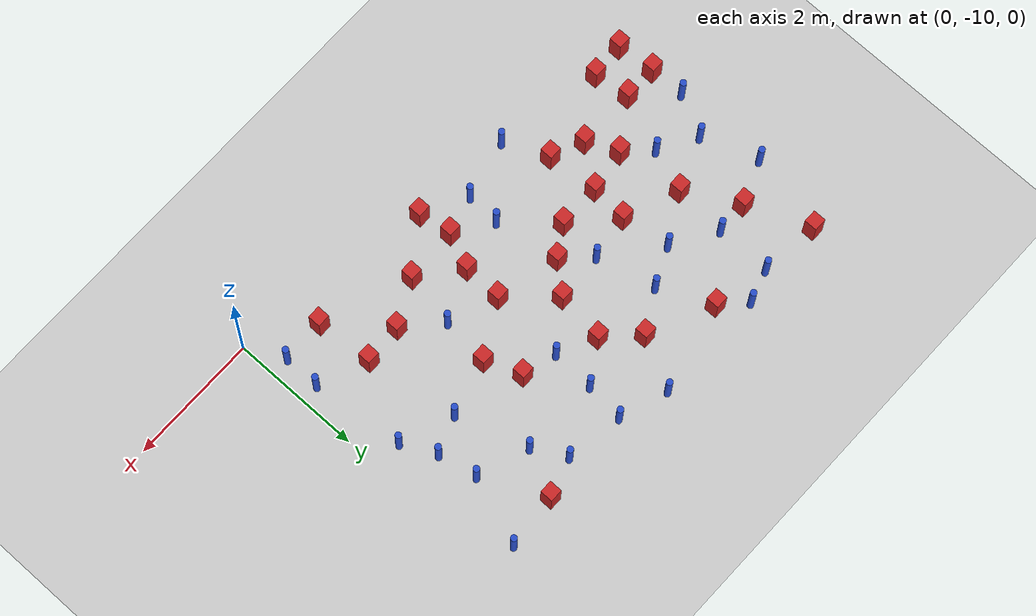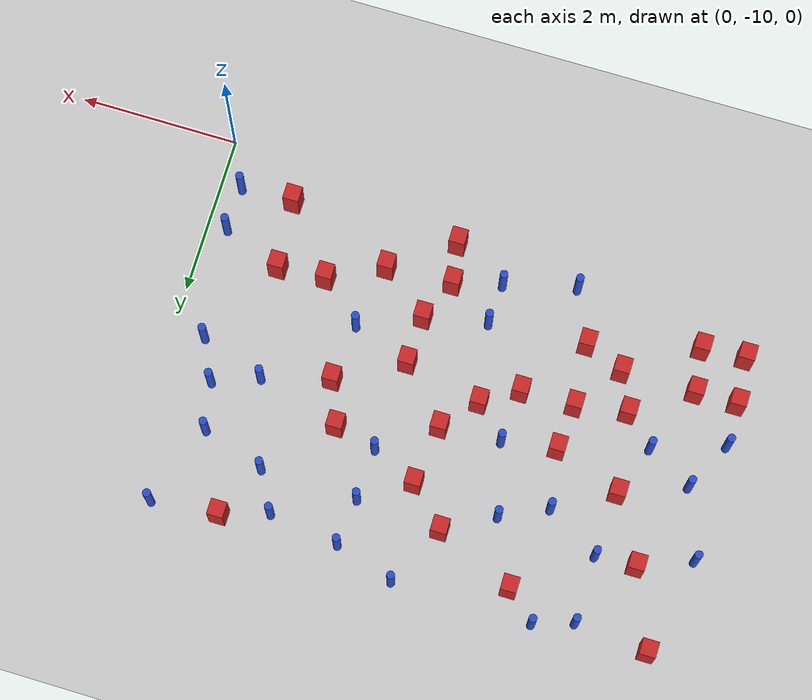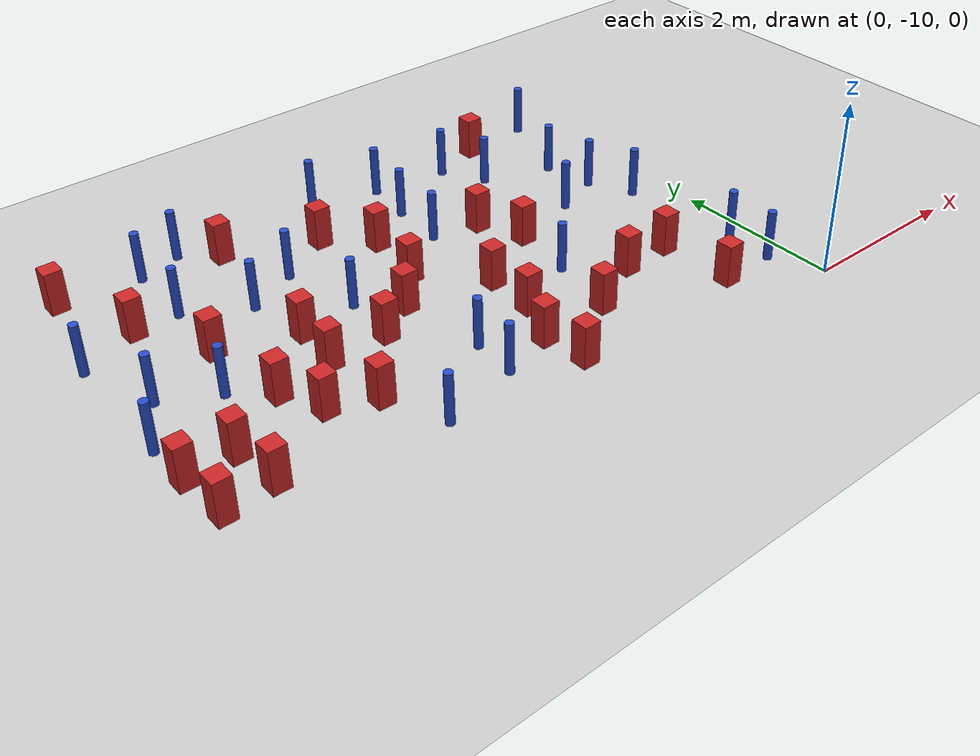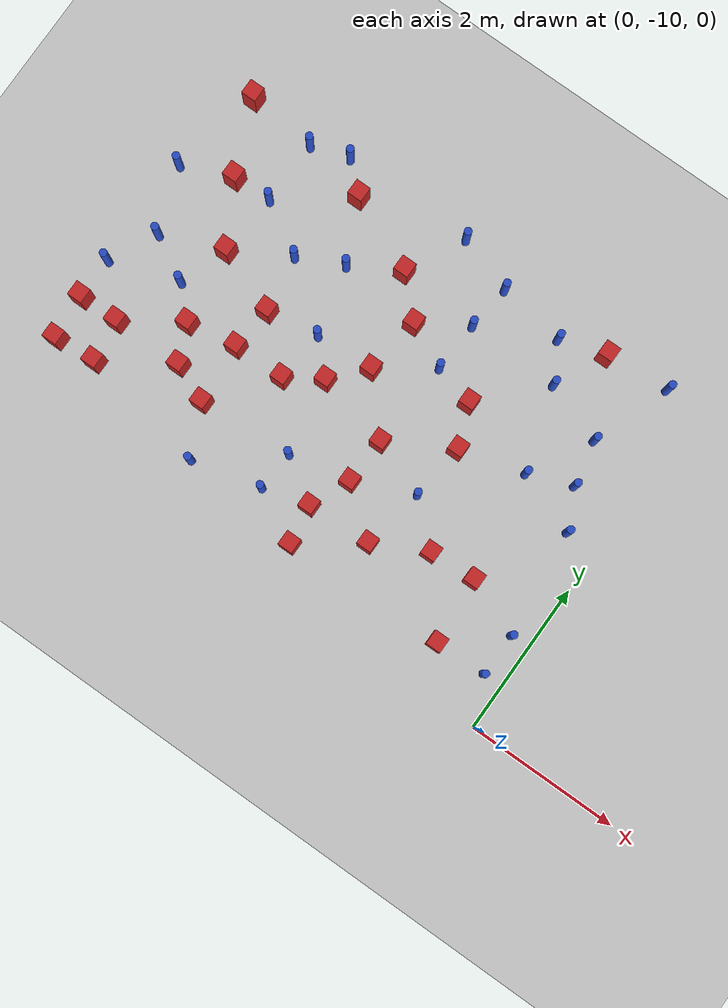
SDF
<sdf version="1.6">
 <world name="default">
  <model name="ground_plane">
   <static>1</static>
   <link name="link">
    <collision name="collision">
     <geometry><plane><normal>0 0 1</normal><size>100 100</size></plane></geometry>
     <surface><friction><ode><mu>100</mu><mu2>50</mu2></ode></friction></surface>
    </collision>
    <visual name="visual">
     <cast_shadows>0</cast_shadows>
     <geometry><plane><normal>0 0 1</normal><size>100 100</size></plane></geometry>
     <material>
      <ambient>1.0 1.0 1.0 1.0</ambient>
      <diffuse>0.8 0.8 0.8 1.0</diffuse>
      <specular>0.01 0.01 0.01 1.000000</specular>
     </material>
    </visual>
   </link>
  </model>
  <model name="square_post_obstacle6">
   <static>true</static>
   <pose>-3.40146848392 -6.44228266172 8.22691968438e-08 7.2212513382e-06 -7.54495500217e-07 2.29674213826e-05</pose>
   <link name="link">
    <pose>0 0 0.25 0 -0 0</pose>
    <inertial>
     <mass>100</mass>
     <inertia>
      <ixx>0.166667</ixx>
      <ixy>0</ixy>
      <ixz>0</ixz>
      <iyy>0.166667</iyy>
      <iyz>0</iyz>
      <izz>0.166667</izz>
     </inertia>
    </inertial>
    <collision name="collision"><geometry><box><size>.2 .2 .5</size></box></geometry></collision>
    <visual name="visual">
     <geometry><box><size>.2 .2 .5</size></box></geometry>
     <material>
      <script><name>Gazebo/Red</name><uri>file://media/materials/scripts/gazebo.material</uri></script>
     </material>
    </visual>
   </link>
  </model>
  <model name="square_post_obstacle9">
   <static>true</static>
   <pose>-6.22999508174 -6.23063073512 8.22691968438e-08 7.2212513382e-06 -7.54495500217e-07 2.29674213826e-05</pose>
   <link name="link">
    <pose>0 0 0.25 0 -0 0</pose>
    <inertial>
     <mass>100</mass>
     <inertia>
      <ixx>0.166667</ixx>
      <ixy>0</ixy>
      <ixz>0</ixz>
      <iyy>0.166667</iyy>
      <iyz>0</iyz>
      <izz>0.166667</izz>
     </inertia>
    </inertial>
    <collision name="collision"><geometry><box><size>.2 .2 .5</size></box></geometry></collision>
    <visual name="visual">
     <geometry><box><size>.2 .2 .5</size></box></geometry>
     <material>
      <script><name>Gazebo/Red</name><uri>file://media/materials/scripts/gazebo.material</uri></script>
     </material>
    </visual>
   </link>
  </model>
  <model name="square_post_obstacle11">
   <static>true</static>
   <pose>-1.62586627458 -8.59294404825 8.22691968438e-08 7.22125133819e-06 -7.54495500217e-07 2.29674213826e-05</pose>
   <link name="link">
    <pose>0 0 0.25 0 -0 0</pose>
    <inertial>
     <mass>100</mass>
     <inertia>
      <ixx>0.166667</ixx>
      <ixy>0</ixy>
      <ixz>0</ixz>
      <iyy>0.166667</iyy>
      <iyz>0</iyz>
      <izz>0.166667</izz>
     </inertia>
    </inertial>
    <collision name="collision"><geometry><box><size>.2 .2 .5</size></box></geometry></collision>
    <visual name="visual">
     <geometry><box><size>.2 .2 .5</size></box></geometry>
     <material>
      <script><name>Gazebo/Red</name><uri>file://media/materials/scripts/gazebo.material</uri></script>
     </material>
    </visual>
   </link>
  </model>
  <model name="square_post_obstacle14">
   <static>true</static>
   <pose>-5.78041702265 -7.02790557127 8.22691968438e-08 7.22125133819e-06 -7.54495500217e-07 2.29674213826e-05</pose>
   <link name="link">
    <pose>0 0 0.25 0 -0 0</pose>
    <inertial>
     <mass>100</mass>
     <inertia>
      <ixx>0.166667</ixx>
      <ixy>0</ixy>
      <ixz>0</ixz>
      <iyy>0.166667</iyy>
      <iyz>0</iyz>
      <izz>0.166667</izz>
     </inertia>
    </inertial>
    <collision name="collision"><geometry><box><size>.2 .2 .5</size></box></geometry></collision>
    <visual name="visual">
     <geometry><box><size>.2 .2 .5</size></box></geometry>
     <material>
      <script><name>Gazebo/Red</name><uri>file://media/materials/scripts/gazebo.material</uri></script>
     </material>
    </visual>
   </link>
  </model>
  <model name="pole_obstacle9">
   <static>true</static>
   <pose>-2.82991241068 -6.70532986122 2.88873142074e-08 -9.90536689859e-09 4.60219948989e-07 -1.20965994961e-07</pose>
   <link name="link">
    <pose>0 0 0.3 0 -0 0</pose>
    <inertial>
     <mass>1</mass>
     <inertia><ixx>0.145833</ixx><ixy>0</ixy><ixz>0</ixz><iyy>0.145833</iyy><iyz>0</iyz><izz>0.125</izz></inertia>
    </inertial>
    <collision name="collision">
     <geometry><cylinder><radius>0.05</radius><length>.6</length></cylinder></geometry>
    </collision>
    <visual name="visual">
     <geometry><cylinder><radius>0.05</radius><length>.6</length></cylinder></geometry>
     <material>
      <script><name>Gazebo/Blue</name><uri>file://media/materials/scripts/gazebo.material</uri></script>
     </material>
    </visual>
   </link>
  </model>
  <model name="square_post_obstacle23">
   <static>true</static>
   <pose>-2.0816851022 -7.38907509785 8.22691968438e-08 7.22125133819e-06 -7.54495500217e-07 2.29674213826e-05</pose>
   <link name="link">
    <pose>0 0 0.25 0 -0 0</pose>
    <inertial>
     <mass>100</mass>
     <inertia>
      <ixx>0.166667</ixx>
      <ixy>0</ixy>
      <ixz>0</ixz>
      <iyy>0.166667</iyy>
      <iyz>0</iyz>
      <izz>0.166667</izz>
     </inertia>
    </inertial>
    <collision name="collision"><geometry><box><size>.2 .2 .5</size></box></geometry></collision>
    <visual name="visual">
     <geometry><box><size>.2 .2 .5</size></box></geometry>
     <material>
      <script><name>Gazebo/Red</name><uri>file://media/materials/scripts/gazebo.material</uri></script>
     </material>
    </visual>
   </link>
  </model>
  <model name="pole_obstacle17">
   <static>true</static>
   <pose>-0.797242546253 -6.34518322117 2.88873142074e-08 -9.90536689661e-09 4.60219948993e-07 -1.20965994957e-07</pose>
   <link name="link">
    <pose>0 0 0.3 0 -0 0</pose>
    <inertial>
     <mass>1</mass>
     <inertia><ixx>0.145833</ixx><ixy>0</ixy><ixz>0</ixz><iyy>0.145833</iyy><iyz>0</iyz><izz>0.125</izz></inertia>
    </inertial>
    <collision name="collision">
     <geometry><cylinder><radius>0.05</radius><length>.6</length></cylinder></geometry>
    </collision>
    <visual name="visual">
     <geometry><cylinder><radius>0.05</radius><length>.6</length></cylinder></geometry>
     <material>
      <script><name>Gazebo/Blue</name><uri>file://media/materials/scripts/gazebo.material</uri></script>
     </material>
    </visual>
   </link>
  </model>
  <model name="pole_obstacle20">
   <static>true</static>
   <pose>-6.00977015047 -7.66628520405 2.88873142074e-08 -9.90536690842e-09 4.60219948965e-07 -1.20965994976e-07</pose>
   <link name="link">
    <pose>0 0 0.3 0 -0 0</pose>
    <inertial>
     <mass>1</mass>
     <inertia><ixx>0.145833</ixx><ixy>0</ixy><ixz>0</ixz><iyy>0.145833</iyy><iyz>0</iyz><izz>0.125</izz></inertia>
    </inertial>
    <collision name="collision">
     <geometry><cylinder><radius>0.05</radius><length>.6</length></cylinder></geometry>
    </collision>
    <visual name="visual">
     <geometry><cylinder><radius>0.05</radius><length>.6</length></cylinder></geometry>
     <material>
      <script><name>Gazebo/Blue</name><uri>file://media/materials/scripts/gazebo.material</uri></script>
     </material>
    </visual>
   </link>
  </model>
  <model name="pole_obstacle31">
   <static>true</static>
   <pose>-2.80197527637 -6.05048496452 2.88873142074e-08 -9.90536689859e-09 4.60219948989e-07 -1.20965994961e-07</pose>
   <link name="link">
    <pose>0 0 0.3 0 -0 0</pose>
    <inertial>
     <mass>1</mass>
     <inertia><ixx>0.145833</ixx><ixy>0</ixy><ixz>0</ixz><iyy>0.145833</iyy><iyz>0</iyz><izz>0.125</izz></inertia>
    </inertial>
    <collision name="collision">
     <geometry><cylinder><radius>0.05</radius><length>.6</length></cylinder></geometry>
    </collision>
    <visual name="visual">
     <geometry><cylinder><radius>0.05</radius><length>.6</length></cylinder></geometry>
     <material>
      <script><name>Gazebo/Blue</name><uri>file://media/materials/scripts/gazebo.material</uri></script>
     </material>
    </visual>
   </link>
  </model>
  <model name="pole_obstacle37">
   <static>true</static>
   <pose>-6.58384882462 -7.34538599902 2.88873142074e-08 -9.90536690842e-09 4.60219948965e-07 -1.20965994976e-07</pose>
   <link name="link">
    <pose>0 0 0.3 0 -0 0</pose>
    <inertial>
     <mass>1</mass>
     <inertia><ixx>0.145833</ixx><ixy>0</ixy><ixz>0</ixz><iyy>0.145833</iyy><iyz>0</iyz><izz>0.125</izz></inertia>
    </inertial>
    <collision name="collision">
     <geometry><cylinder><radius>0.05</radius><length>.6</length></cylinder></geometry>
    </collision>
    <visual name="visual">
     <geometry><cylinder><radius>0.05</radius><length>.6</length></cylinder></geometry>
     <material>
      <script><name>Gazebo/Blue</name><uri>file://media/materials/scripts/gazebo.material</uri></script>
     </material>
    </visual>
   </link>
  </model>
  <model name="pole_obstacle40">
   <static>true</static>
   <pose>-5.72032559281 -5.36293134777 2.88873142074e-08 -9.90536690842e-09 4.60219948965e-07 -1.20965994976e-07</pose>
   <link name="link">
    <pose>0 0 0.3 0 -0 0</pose>
    <inertial>
     <mass>1</mass>
     <inertia><ixx>0.145833</ixx><ixy>0</ixy><ixz>0</ixz><iyy>0.145833</iyy><iyz>0</iyz><izz>0.125</izz></inertia>
    </inertial>
    <collision name="collision">
     <geometry><cylinder><radius>0.05</radius><length>.6</length></cylinder></geometry>
    </collision>
    <visual name="visual">
     <geometry><cylinder><radius>0.05</radius><length>.6</length></cylinder></geometry>
     <material>
      <script><name>Gazebo/Blue</name><uri>file://media/materials/scripts/gazebo.material</uri></script>
     </material>
    </visual>
   </link>
  </model>
  <model name="pole_obstacle60">
   <static>true</static>
   <pose>-6.89643523109 -7.96466774745 2.88873142074e-08 -9.90536690264e-09 4.60219948979e-07 -1.20965994965e-07</pose>
   <link name="link">
    <pose>0 0 0.3 0 -0 0</pose>
    <inertial>
     <mass>1</mass>
     <inertia><ixx>0.145833</ixx><ixy>0</ixy><ixz>0</ixz><iyy>0.145833</iyy><iyz>0</iyz><izz>0.125</izz></inertia>
    </inertial>
    <collision name="collision">
     <geometry><cylinder><radius>0.05</radius><length>.6</length></cylinder></geometry>
    </collision>
    <visual name="visual">
     <geometry><cylinder><radius>0.05</radius><length>.6</length></cylinder></geometry>
     <material>
      <script><name>Gazebo/Blue</name><uri>file://media/materials/scripts/gazebo.material</uri></script>
     </material>
    </visual>
   </link>
  </model>
  <model name="square_post_obstacle65">
   <static>true</static>
   <pose>-4.94007563499 -7.34598108323 8.22691968438e-08 7.2212513382e-06 -7.54495500217e-07 2.29674213826e-05</pose>
   <link name="link">
    <pose>0 0 0.25 0 -0 0</pose>
    <inertial>
     <mass>100</mass>
     <inertia>
      <ixx>0.166667</ixx>
      <ixy>0</ixy>
      <ixz>0</ixz>
      <iyy>0.166667</iyy>
      <iyz>0</iyz>
      <izz>0.166667</izz>
     </inertia>
    </inertial>
    <collision name="collision"><geometry><box><size>.2 .2 .5</size></box></geometry></collision>
    <visual name="visual">
     <geometry><box><size>.2 .2 .5</size></box></geometry>
     <material>
      <script><name>Gazebo/Red</name><uri>file://media/materials/scripts/gazebo.material</uri></script>
     </material>
    </visual>
   </link>
  </model>
  <model name="pole_obstacle66">
   <static>true</static>
   <pose>-4.48494771432 -6.33307576314 2.88873142074e-08 -9.90536690842e-09 4.60219948965e-07 -1.20965994976e-07</pose>
   <link name="link">
    <pose>0 0 0.3 0 -0 0</pose>
    <inertial>
     <mass>1</mass>
     <inertia><ixx>0.145833</ixx><ixy>0</ixy><ixz>0</ixz><iyy>0.145833</iyy><iyz>0</iyz><izz>0.125</izz></inertia>
    </inertial>
    <collision name="collision">
     <geometry><cylinder><radius>0.05</radius><length>.6</length></cylinder></geometry>
    </collision>
    <visual name="visual">
     <geometry><cylinder><radius>0.05</radius><length>.6</length></cylinder></geometry>
     <material>
      <script><name>Gazebo/Blue</name><uri>file://media/materials/scripts/gazebo.material</uri></script>
     </material>
    </visual>
   </link>
  </model>
  <model name="pole_obstacle73">
   <static>true</static>
   <pose>-0.42837406353 -5.3205405281 2.88873142074e-08 -9.90536689683e-09 4.60219948993e-07 -1.20965994957e-07</pose>
   <link name="link">
    <pose>0 0 0.3 0 -0 0</pose>
    <inertial>
     <mass>1</mass>
     <inertia><ixx>0.145833</ixx><ixy>0</ixy><ixz>0</ixz><iyy>0.145833</iyy><iyz>0</iyz><izz>0.125</izz></inertia>
    </inertial>
    <collision name="collision">
     <geometry><cylinder><radius>0.05</radius><length>.6</length></cylinder></geometry>
    </collision>
    <visual name="visual">
     <geometry><cylinder><radius>0.05</radius><length>.6</length></cylinder></geometry>
     <material>
      <script><name>Gazebo/Blue</name><uri>file://media/materials/scripts/gazebo.material</uri></script>
     </material>
    </visual>
   </link>
  </model>
  <model name="pole_obstacle76">
   <static>true</static>
   <pose>-1.85871130663 -5.58380083242 2.88873142074e-08 -9.90536689852e-09 4.60219948989e-07 -1.2096599496e-07</pose>
   <link name="link">
    <pose>0 0 0.3 0 -0 0</pose>
    <inertial>
     <mass>1</mass>
     <inertia><ixx>0.145833</ixx><ixy>0</ixy><ixz>0</ixz><iyy>0.145833</iyy><iyz>0</iyz><izz>0.125</izz></inertia>
    </inertial>
    <collision name="collision">
     <geometry><cylinder><radius>0.05</radius><length>.6</length></cylinder></geometry>
    </collision>
    <visual name="visual">
     <geometry><cylinder><radius>0.05</radius><length>.6</length></cylinder></geometry>
     <material>
      <script><name>Gazebo/Blue</name><uri>file://media/materials/scripts/gazebo.material</uri></script>
     </material>
    </visual>
   </link>
  </model>
  <model name="square_post_obstacle82">
   <static>true</static>
   <pose>-6.3507849256 -8.50285386852 8.22691968438e-08 7.2212513382e-06 -7.54495500217e-07 2.29674213826e-05</pose>
   <link name="link">
    <pose>0 0 0.25 0 -0 0</pose>
    <inertial>
     <mass>100</mass>
     <inertia>
      <ixx>0.166667</ixx>
      <ixy>0</ixy>
      <ixz>0</ixz>
      <iyy>0.166667</iyy>
      <iyz>0</iyz>
      <izz>0.166667</izz>
     </inertia>
    </inertial>
    <collision name="collision"><geometry><box><size>.2 .2 .5</size></box></geometry></collision>
    <visual name="visual">
     <geometry><box><size>.2 .2 .5</size></box></geometry>
     <material>
      <script><name>Gazebo/Red</name><uri>file://media/materials/scripts/gazebo.material</uri></script>
     </material>
    </visual>
   </link>
  </model>
  <model name="pole_obstacle95">
   <static>true</static>
   <pose>-3.70366438857 -8.61953324364 2.88873142074e-08 -9.90536692318e-09 4.6021994893e-07 -1.20965994988e-07</pose>
   <link name="link">
    <pose>0 0 0.3 0 -0 0</pose>
    <inertial>
     <mass>1</mass>
     <inertia><ixx>0.145833</ixx><ixy>0</ixy><ixz>0</ixz><iyy>0.145833</iyy><iyz>0</iyz><izz>0.125</izz></inertia>
    </inertial>
    <collision name="collision">
     <geometry><cylinder><radius>0.05</radius><length>.6</length></cylinder></geometry>
    </collision>
    <visual name="visual">
     <geometry><cylinder><radius>0.05</radius><length>.6</length></cylinder></geometry>
     <material>
      <script><name>Gazebo/Blue</name><uri>file://media/materials/scripts/gazebo.material</uri></script>
     </material>
    </visual>
   </link>
  </model>
  <model name="pole_obstacle102">
   <static>true</static>
   <pose>-2.15625026908 -8.12351477775 2.88873142074e-08 -9.90536692318e-09 4.6021994893e-07 -1.20965994988e-07</pose>
   <link name="link">
    <pose>0 0 0.3 0 -0 0</pose>
    <inertial>
     <mass>1</mass>
     <inertia><ixx>0.145833</ixx><ixy>0</ixy><ixz>0</ixz><iyy>0.145833</iyy><iyz>0</iyz><izz>0.125</izz></inertia>
    </inertial>
    <collision name="collision">
     <geometry><cylinder><radius>0.05</radius><length>.6</length></cylinder></geometry>
    </collision>
    <visual name="visual">
     <geometry><cylinder><radius>0.05</radius><length>.6</length></cylinder></geometry>
     <material>
      <script><name>Gazebo/Blue</name><uri>file://media/materials/scripts/gazebo.material</uri></script>
     </material>
    </visual>
   </link>
  </model>
  <model name="pole_obstacle104">
   <static>true</static>
   <pose>-5.72898272285 -6.20744558964 2.88873142074e-08 -9.90536690842e-09 4.60219948965e-07 -1.20965994976e-07</pose>
   <link name="link">
    <pose>0 0 0.3 0 -0 0</pose>
    <inertial>
     <mass>1</mass>
     <inertia><ixx>0.145833</ixx><ixy>0</ixy><ixz>0</ixz><iyy>0.145833</iyy><iyz>0</iyz><izz>0.125</izz></inertia>
    </inertial>
    <collision name="collision">
     <geometry><cylinder><radius>0.05</radius><length>.6</length></cylinder></geometry>
    </collision>
    <visual name="visual">
     <geometry><cylinder><radius>0.05</radius><length>.6</length></cylinder></geometry>
     <material>
      <script><name>Gazebo/Blue</name><uri>file://media/materials/scripts/gazebo.material</uri></script>
     </material>
    </visual>
   </link>
  </model>
  <model name="pole_obstacle116">
   <static>true</static>
   <pose>-4.26345358489 -7.23495822645 2.88873142074e-08 -9.90536690842e-09 4.60219948965e-07 -1.20965994976e-07</pose>
   <link name="link">
    <pose>0 0 0.3 0 -0 0</pose>
    <inertial>
     <mass>1</mass>
     <inertia><ixx>0.145833</ixx><ixy>0</ixy><ixz>0</ixz><iyy>0.145833</iyy><iyz>0</iyz><izz>0.125</izz></inertia>
    </inertial>
    <collision name="collision">
     <geometry><cylinder><radius>0.05</radius><length>.6</length></cylinder></geometry>
    </collision>
    <visual name="visual">
     <geometry><cylinder><radius>0.05</radius><length>.6</length></cylinder></geometry>
     <material>
      <script><name>Gazebo/Blue</name><uri>file://media/materials/scripts/gazebo.material</uri></script>
     </material>
    </visual>
   </link>
  </model>
  <model name="pole_obstacle117">
   <static>true</static>
   <pose>-0.265170101066 -8.85017245973 2.88873142074e-08 -9.90536690955e-09 4.60219948963e-07 -1.20965994979e-07</pose>
   <link name="link">
    <pose>0 0 0.3 0 -0 0</pose>
    <inertial>
     <mass>1</mass>
     <inertia><ixx>0.145833</ixx><ixy>0</ixy><ixz>0</ixz><iyy>0.145833</iyy><iyz>0</iyz><izz>0.125</izz></inertia>
    </inertial>
    <collision name="collision">
     <geometry><cylinder><radius>0.05</radius><length>.6</length></cylinder></geometry>
    </collision>
    <visual name="visual">
     <geometry><cylinder><radius>0.05</radius><length>.6</length></cylinder></geometry>
     <material>
      <script><name>Gazebo/Blue</name><uri>file://media/materials/scripts/gazebo.material</uri></script>
     </material>
    </visual>
   </link>
  </model>
  <model name="square_post_obstacle104">
   <static>true</static>
   <pose>-3.14070208322 -8.97656314699 8.22691968438e-08 7.22125133819e-06 -7.54495500217e-07 2.29674213826e-05</pose>
   <link name="link">
    <pose>0 0 0.25 0 -0 0</pose>
    <inertial>
     <mass>100</mass>
     <inertia>
      <ixx>0.166667</ixx>
      <ixy>0</ixy>
      <ixz>0</ixz>
      <iyy>0.166667</iyy>
      <iyz>0</iyz>
      <izz>0.166667</izz>
     </inertia>
    </inertial>
    <collision name="collision"><geometry><box><size>.2 .2 .5</size></box></geometry></collision>
    <visual name="visual">
     <geometry><box><size>.2 .2 .5</size></box></geometry>
     <material>
      <script><name>Gazebo/Red</name><uri>file://media/materials/scripts/gazebo.material</uri></script>
     </material>
    </visual>
   </link>
  </model>
  <model name="square_post_obstacle106">
   <static>true</static>
   <pose>-4.93062440575 -8.70425322313 8.22691968438e-08 7.22125133819e-06 -7.54495500217e-07 2.29674213826e-05</pose>
   <link name="link">
    <pose>0 0 0.25 0 -0 0</pose>
    <inertial>
     <mass>100</mass>
     <inertia>
      <ixx>0.166667</ixx>
      <ixy>0</ixy>
      <ixz>0</ixz>
      <iyy>0.166667</iyy>
      <iyz>0</iyz>
      <izz>0.166667</izz>
     </inertia>
    </inertial>
    <collision name="collision"><geometry><box><size>.2 .2 .5</size></box></geometry></collision>
    <visual name="visual">
     <geometry><box><size>.2 .2 .5</size></box></geometry>
     <material>
      <script><name>Gazebo/Red</name><uri>file://media/materials/scripts/gazebo.material</uri></script>
     </material>
    </visual>
   </link>
  </model>
  <model name="pole_obstacle119">
   <static>true</static>
   <pose>-0.275382369589 -9.41490192976 2.88873142074e-08 -9.90536690955e-09 4.60219948963e-07 -1.20965994979e-07</pose>
   <link name="link">
    <pose>0 0 0.3 0 -0 0</pose>
    <inertial>
     <mass>1</mass>
     <inertia><ixx>0.145833</ixx><ixy>0</ixy><ixz>0</ixz><iyy>0.145833</iyy><iyz>0</iyz><izz>0.125</izz></inertia>
    </inertial>
    <collision name="collision">
     <geometry><cylinder><radius>0.05</radius><length>.6</length></cylinder></geometry>
    </collision>
    <visual name="visual">
     <geometry><cylinder><radius>0.05</radius><length>.6</length></cylinder></geometry>
     <material>
      <script><name>Gazebo/Blue</name><uri>file://media/materials/scripts/gazebo.material</uri></script>
     </material>
    </visual>
   </link>
  </model>
  <model name="pole_obstacle122">
   <static>true</static>
   <pose>-3.48251703652 -5.21257250022 2.88873142074e-08 -9.90536689859e-09 4.60219948989e-07 -1.20965994961e-07</pose>
   <link name="link">
    <pose>0 0 0.3 0 -0 0</pose>
    <inertial>
     <mass>1</mass>
     <inertia><ixx>0.145833</ixx><ixy>0</ixy><ixz>0</ixz><iyy>0.145833</iyy><iyz>0</iyz><izz>0.125</izz></inertia>
    </inertial>
    <collision name="collision">
     <geometry><cylinder><radius>0.05</radius><length>.6</length></cylinder></geometry>
    </collision>
    <visual name="visual">
     <geometry><cylinder><radius>0.05</radius><length>.6</length></cylinder></geometry>
     <material>
      <script><name>Gazebo/Blue</name><uri>file://media/materials/scripts/gazebo.material</uri></script>
     </material>
    </visual>
   </link>
  </model>
  <model name="pole_obstacle125">
   <static>true</static>
   <pose>-4.63133811811 -9.36362087477 2.88873142074e-08 -9.9053668967e-09 4.60219948993e-07 -1.20965994957e-07</pose>
   <link name="link">
    <pose>0 0 0.3 0 -0 0</pose>
    <inertial>
     <mass>1</mass>
     <inertia><ixx>0.145833</ixx><ixy>0</ixy><ixz>0</ixz><iyy>0.145833</iyy><iyz>0</iyz><izz>0.125</izz></inertia>
    </inertial>
    <collision name="collision">
     <geometry><cylinder><radius>0.05</radius><length>.6</length></cylinder></geometry>
    </collision>
    <visual name="visual">
     <geometry><cylinder><radius>0.05</radius><length>.6</length></cylinder></geometry>
     <material>
      <script><name>Gazebo/Blue</name><uri>file://media/materials/scripts/gazebo.material</uri></script>
     </material>
    </visual>
   </link>
  </model>
  <model name="square_post_obstacle117">
   <static>true</static>
   <pose>-1.02233894235 -8.55788489621 8.22691968438e-08 7.22125133819e-06 -7.54495500217e-07 2.29674213826e-05</pose>
   <link name="link">
    <pose>0 0 0.25 0 -0 0</pose>
    <inertial>
     <mass>100</mass>
     <inertia>
      <ixx>0.166667</ixx>
      <ixy>0</ixy>
      <ixz>0</ixz>
      <iyy>0.166667</iyy>
      <iyz>0</iyz>
      <izz>0.166667</izz>
     </inertia>
    </inertial>
    <collision name="collision"><geometry><box><size>.2 .2 .5</size></box></geometry></collision>
    <visual name="visual">
     <geometry><box><size>.2 .2 .5</size></box></geometry>
     <material>
      <script><name>Gazebo/Red</name><uri>file://media/materials/scripts/gazebo.material</uri></script>
     </material>
    </visual>
   </link>
  </model>
  <model name="square_post_obstacle118">
   <static>true</static>
   <pose>-5.42369257733 -8.50037082341 8.22691968438e-08 7.22125133819e-06 -7.54495500217e-07 2.29674213826e-05</pose>
   <link name="link">
    <pose>0 0 0.25 0 -0 0</pose>
    <inertial>
     <mass>100</mass>
     <inertia>
      <ixx>0.166667</ixx>
      <ixy>0</ixy>
      <ixz>0</ixz>
      <iyy>0.166667</iyy>
      <iyz>0</iyz>
      <izz>0.166667</izz>
     </inertia>
    </inertial>
    <collision name="collision"><geometry><box><size>.2 .2 .5</size></box></geometry></collision>
    <visual name="visual">
     <geometry><box><size>.2 .2 .5</size></box></geometry>
     <material>
      <script><name>Gazebo/Red</name><uri>file://media/materials/scripts/gazebo.material</uri></script>
     </material>
    </visual>
   </link>
  </model>
  <model name="pole_obstacle137">
   <static>true</static>
   <pose>-0.674846589234 -6.93531833374 2.88873142074e-08 -9.90536689661e-09 4.60219948993e-07 -1.20965994957e-07</pose>
   <link name="link">
    <pose>0 0 0.3 0 -0 0</pose>
    <inertial>
     <mass>1</mass>
     <inertia><ixx>0.145833</ixx><ixy>0</ixy><ixz>0</ixz><iyy>0.145833</iyy><iyz>0</iyz><izz>0.125</izz></inertia>
    </inertial>
    <collision name="collision">
     <geometry><cylinder><radius>0.05</radius><length>.6</length></cylinder></geometry>
    </collision>
    <visual name="visual">
     <geometry><cylinder><radius>0.05</radius><length>.6</length></cylinder></geometry>
     <material>
      <script><name>Gazebo/Blue</name><uri>file://media/materials/scripts/gazebo.material</uri></script>
     </material>
    </visual>
   </link>
  </model>
  <model name="pole_obstacle138">
   <static>true</static>
   <pose>-3.73318418683 -9.14110920428 2.88873142074e-08 -9.90536692318e-09 4.6021994893e-07 -1.20965994988e-07</pose>
   <link name="link">
    <pose>0 0 0.3 0 -0 0</pose>
    <inertial>
     <mass>1</mass>
     <inertia><ixx>0.145833</ixx><ixy>0</ixy><ixz>0</ixz><iyy>0.145833</iyy><iyz>0</iyz><izz>0.125</izz></inertia>
    </inertial>
    <collision name="collision">
     <geometry><cylinder><radius>0.05</radius><length>.6</length></cylinder></geometry>
    </collision>
    <visual name="visual">
     <geometry><cylinder><radius>0.05</radius><length>.6</length></cylinder></geometry>
     <material>
      <script><name>Gazebo/Blue</name><uri>file://media/materials/scripts/gazebo.material</uri></script>
     </material>
    </visual>
   </link>
  </model>
  <model name="square_post_obstacle120">
   <static>true</static>
   <pose>-2.30631130978 -8.93736113248 8.22691968438e-08 7.22125133819e-06 -7.54495500217e-07 2.29674213826e-05</pose>
   <link name="link">
    <pose>0 0 0.25 0 -0 0</pose>
    <inertial>
     <mass>100</mass>
     <inertia>
      <ixx>0.166667</ixx>
      <ixy>0</ixy>
      <ixz>0</ixz>
      <iyy>0.166667</iyy>
      <iyz>0</iyz>
      <izz>0.166667</izz>
     </inertia>
    </inertial>
    <collision name="collision"><geometry><box><size>.2 .2 .5</size></box></geometry></collision>
    <visual name="visual">
     <geometry><box><size>.2 .2 .5</size></box></geometry>
     <material>
      <script><name>Gazebo/Red</name><uri>file://media/materials/scripts/gazebo.material</uri></script>
     </material>
    </visual>
   </link>
  </model>
  <model name="square_post_obstacle123">
   <static>true</static>
   <pose>-2.8957368428 -7.85498201337 8.22691968438e-08 7.2212513382e-06 -7.54495500217e-07 2.29674213826e-05</pose>
   <link name="link">
    <pose>0 0 0.25 0 -0 0</pose>
    <inertial>
     <mass>100</mass>
     <inertia>
      <ixx>0.166667</ixx>
      <ixy>0</ixy>
      <ixz>0</ixz>
      <iyy>0.166667</iyy>
      <iyz>0</iyz>
      <izz>0.166667</izz>
     </inertia>
    </inertial>
    <collision name="collision"><geometry><box><size>.2 .2 .5</size></box></geometry></collision>
    <visual name="visual">
     <geometry><box><size>.2 .2 .5</size></box></geometry>
     <material>
      <script><name>Gazebo/Red</name><uri>file://media/materials/scripts/gazebo.material</uri></script>
     </material>
    </visual>
   </link>
  </model>
  <model name="pole_obstacle141">
   <static>true</static>
   <pose>-1.58570856532 -6.07538983817 2.88873142074e-08 -9.90536689852e-09 4.60219948989e-07 -1.2096599496e-07</pose>
   <link name="link">
    <pose>0 0 0.3 0 -0 0</pose>
    <inertial>
     <mass>1</mass>
     <inertia><ixx>0.145833</ixx><ixy>0</ixy><ixz>0</ixz><iyy>0.145833</iyy><iyz>0</iyz><izz>0.125</izz></inertia>
    </inertial>
    <collision name="collision">
     <geometry><cylinder><radius>0.05</radius><length>.6</length></cylinder></geometry>
    </collision>
    <visual name="visual">
     <geometry><cylinder><radius>0.05</radius><length>.6</length></cylinder></geometry>
     <material>
      <script><name>Gazebo/Blue</name><uri>file://media/materials/scripts/gazebo.material</uri></script>
     </material>
    </visual>
   </link>
  </model>
  <model name="square_post_obstacle126">
   <static>true</static>
   <pose>-3.87168889733 -7.62387355782 8.22691968438e-08 7.2212513382e-06 -7.54495500217e-07 2.29674213826e-05</pose>
   <link name="link">
    <pose>0 0 0.25 0 -0 0</pose>
    <inertial>
     <mass>100</mass>
     <inertia>
      <ixx>0.166667</ixx>
      <ixy>0</ixy>
      <ixz>0</ixz>
      <iyy>0.166667</iyy>
      <iyz>0</iyz>
      <izz>0.166667</izz>
     </inertia>
    </inertial>
    <collision name="collision"><geometry><box><size>.2 .2 .5</size></box></geometry></collision>
    <visual name="visual">
     <geometry><box><size>.2 .2 .5</size></box></geometry>
     <material>
      <script><name>Gazebo/Red</name><uri>file://media/materials/scripts/gazebo.material</uri></script>
     </material>
    </visual>
   </link>
  </model>
  <model name="pole_obstacle148">
   <static>true</static>
   <pose>-1.24049290196 -7.15381692387 2.88873142074e-08 -9.90536689852e-09 4.60219948989e-07 -1.2096599496e-07</pose>
   <link name="link">
    <pose>0 0 0.3 0 -0 0</pose>
    <inertial>
     <mass>1</mass>
     <inertia><ixx>0.145833</ixx><ixy>0</ixy><ixz>0</ixz><iyy>0.145833</iyy><iyz>0</iyz><izz>0.125</izz></inertia>
    </inertial>
    <collision name="collision">
     <geometry><cylinder><radius>0.05</radius><length>.6</length></cylinder></geometry>
    </collision>
    <visual name="visual">
     <geometry><cylinder><radius>0.05</radius><length>.6</length></cylinder></geometry>
     <material>
      <script><name>Gazebo/Blue</name><uri>file://media/materials/scripts/gazebo.material</uri></script>
     </material>
    </visual>
   </link>
  </model>
  <model name="square_post_obstacle137">
   <static>true</static>
   <pose>-6.28182707908 -9.05546672329 8.22691968438e-08 7.2212513382e-06 -7.54495500217e-07 2.29674213826e-05</pose>
   <link name="link">
    <pose>0 0 0.25 0 -0 0</pose>
    <inertial>
     <mass>100</mass>
     <inertia>
      <ixx>0.166667</ixx>
      <ixy>0</ixy>
      <ixz>0</ixz>
      <iyy>0.166667</iyy>
      <iyz>0</iyz>
      <izz>0.166667</izz>
     </inertia>
    </inertial>
    <collision name="collision"><geometry><box><size>.2 .2 .5</size></box></geometry></collision>
    <visual name="visual">
     <geometry><box><size>.2 .2 .5</size></box></geometry>
     <material>
      <script><name>Gazebo/Red</name><uri>file://media/materials/scripts/gazebo.material</uri></script>
     </material>
    </visual>
   </link>
  </model>
  <model name="pole_obstacle150">
   <static>true</static>
   <pose>-0.427139018775 -7.4467350101 2.88873142074e-08 -9.90536689683e-09 4.60219948993e-07 -1.20965994957e-07</pose>
   <link name="link">
    <pose>0 0 0.3 0 -0 0</pose>
    <inertial>
     <mass>1</mass>
     <inertia><ixx>0.145833</ixx><ixy>0</ixy><ixz>0</ixz><iyy>0.145833</iyy><iyz>0</iyz><izz>0.125</izz></inertia>
    </inertial>
    <collision name="collision">
     <geometry><cylinder><radius>0.05</radius><length>.6</length></cylinder></geometry>
    </collision>
    <visual name="visual">
     <geometry><cylinder><radius>0.05</radius><length>.6</length></cylinder></geometry>
     <material>
      <script><name>Gazebo/Blue</name><uri>file://media/materials/scripts/gazebo.material</uri></script>
     </material>
    </visual>
   </link>
  </model>
  <model name="square_post_obstacle142">
   <static>true</static>
   <pose>-6.82666090404 -9.09347083597 8.22691968438e-08 7.22125133819e-06 -7.54495500217e-07 2.29674213826e-05</pose>
   <link name="link">
    <pose>0 0 0.25 0 -0 0</pose>
    <inertial>
     <mass>100</mass>
     <inertia>
      <ixx>0.166667</ixx>
      <ixy>0</ixy>
      <ixz>0</ixz>
      <iyy>0.166667</iyy>
      <iyz>0</iyz>
      <izz>0.166667</izz>
     </inertia>
    </inertial>
    <collision name="collision"><geometry><box><size>.2 .2 .5</size></box></geometry></collision>
    <visual name="visual">
     <geometry><box><size>.2 .2 .5</size></box></geometry>
     <material>
      <script><name>Gazebo/Red</name><uri>file://media/materials/scripts/gazebo.material</uri></script>
     </material>
    </visual>
   </link>
  </model>
  <model name="pole_obstacle156">
   <static>true</static>
   <pose>-2.73895655612 -5.45429225676 2.88873142074e-08 -9.90536689859e-09 4.60219948989e-07 -1.20965994961e-07</pose>
   <link name="link">
    <pose>0 0 0.3 0 -0 0</pose>
    <inertial>
     <mass>1</mass>
     <inertia><ixx>0.145833</ixx><ixy>0</ixy><ixz>0</ixz><iyy>0.145833</iyy><iyz>0</iyz><izz>0.125</izz></inertia>
    </inertial>
    <collision name="collision">
     <geometry><cylinder><radius>0.05</radius><length>.6</length></cylinder></geometry>
    </collision>
    <visual name="visual">
     <geometry><cylinder><radius>0.05</radius><length>.6</length></cylinder></geometry>
     <material>
      <script><name>Gazebo/Blue</name><uri>file://media/materials/scripts/gazebo.material</uri></script>
     </material>
    </visual>
   </link>
  </model>
  <model name="pole_obstacle163">
   <static>true</static>
   <pose>-5.22532081642 -5.20451418029 2.88873142074e-08 -9.90536690842e-09 4.60219948965e-07 -1.20965994976e-07</pose>
   <link name="link">
    <pose>0 0 0.3 0 -0 0</pose>
    <inertial>
     <mass>1</mass>
     <inertia><ixx>0.145833</ixx><ixy>0</ixy><ixz>0</ixz><iyy>0.145833</iyy><iyz>0</iyz><izz>0.125</izz></inertia>
    </inertial>
    <collision name="collision">
     <geometry><cylinder><radius>0.05</radius><length>.6</length></cylinder></geometry>
    </collision>
    <visual name="visual">
     <geometry><cylinder><radius>0.05</radius><length>.6</length></cylinder></geometry>
     <material>
      <script><name>Gazebo/Blue</name><uri>file://media/materials/scripts/gazebo.material</uri></script>
     </material>
    </visual>
   </link>
  </model>
  <model name="square_post_obstacle156">
   <static>true</static>
   <pose>-2.9150258141 -8.45763667322 8.22691968438e-08 7.22125133819e-06 -7.54495500217e-07 2.29674213826e-05</pose>
   <link name="link">
    <pose>0 0 0.25 0 -0 0</pose>
    <inertial>
     <mass>100</mass>
     <inertia>
      <ixx>0.166667</ixx>
      <ixy>0</ixy>
      <ixz>0</ixz>
      <iyy>0.166667</iyy>
      <iyz>0</iyz>
      <izz>0.166667</izz>
     </inertia>
    </inertial>
    <collision name="collision"><geometry><box><size>.2 .2 .5</size></box></geometry></collision>
    <visual name="visual">
     <geometry><box><size>.2 .2 .5</size></box></geometry>
     <material>
      <script><name>Gazebo/Red</name><uri>file://media/materials/scripts/gazebo.material</uri></script>
     </material>
    </visual>
   </link>
  </model>
  <model name="pole_obstacle170">
   <static>true</static>
   <pose>-5.06341790201 -6.60685926756 2.88873142074e-08 -9.90536690842e-09 4.60219948965e-07 -1.20965994976e-07</pose>
   <link name="link">
    <pose>0 0 0.3 0 -0 0</pose>
    <inertial>
     <mass>1</mass>
     <inertia><ixx>0.145833</ixx><ixy>0</ixy><ixz>0</ixz><iyy>0.145833</iyy><iyz>0</iyz><izz>0.125</izz></inertia>
    </inertial>
    <collision name="collision">
     <geometry><cylinder><radius>0.05</radius><length>.6</length></cylinder></geometry>
    </collision>
    <visual name="visual">
     <geometry><cylinder><radius>0.05</radius><length>.6</length></cylinder></geometry>
     <material>
      <script><name>Gazebo/Blue</name><uri>file://media/materials/scripts/gazebo.material</uri></script>
     </material>
    </visual>
   </link>
  </model>
  <model name="pole_obstacle181">
   <static>true</static>
   <pose>-6.88833158117 -6.49315566914 2.88873142074e-08 -9.90536690842e-09 4.60219948965e-07 -1.20965994976e-07</pose>
   <link name="link">
    <pose>0 0 0.3 0 -0 0</pose>
    <inertial>
     <mass>1</mass>
     <inertia><ixx>0.145833</ixx><ixy>0</ixy><ixz>0</ixz><iyy>0.145833</iyy><iyz>0</iyz><izz>0.125</izz></inertia>
    </inertial>
    <collision name="collision">
     <geometry><cylinder><radius>0.05</radius><length>.6</length></cylinder></geometry>
    </collision>
    <visual name="visual">
     <geometry><cylinder><radius>0.05</radius><length>.6</length></cylinder></geometry>
     <material>
      <script><name>Gazebo/Blue</name><uri>file://media/materials/scripts/gazebo.material</uri></script>
     </material>
    </visual>
   </link>
  </model>
  <model name="square_post_obstacle171">
   <static>true</static>
   <pose>-6.8759255041 -8.50914392819 8.22691968438e-08 7.2212513382e-06 -7.54495500217e-07 2.29674213826e-05</pose>
   <link name="link">
    <pose>0 0 0.25 0 -0 0</pose>
    <inertial>
     <mass>100</mass>
     <inertia>
      <ixx>0.166667</ixx>
      <ixy>0</ixy>
      <ixz>0</ixz>
      <iyy>0.166667</iyy>
      <iyz>0</iyz>
      <izz>0.166667</izz>
     </inertia>
    </inertial>
    <collision name="collision"><geometry><box><size>.2 .2 .5</size></box></geometry></collision>
    <visual name="visual">
     <geometry><box><size>.2 .2 .5</size></box></geometry>
     <material>
      <script><name>Gazebo/Red</name><uri>file://media/materials/scripts/gazebo.material</uri></script>
     </material>
    </visual>
   </link>
  </model>
  <model name="square_post_obstacle174">
   <static>true</static>
   <pose>-3.86493074471 -5.98017832047 8.22691968438e-08 7.2212513382e-06 -7.54495500217e-07 2.29674213826e-05</pose>
   <link name="link">
    <pose>0 0 0.25 0 -0 0</pose>
    <inertial>
     <mass>100</mass>
     <inertia>
      <ixx>0.166667</ixx>
      <ixy>0</ixy>
      <ixz>0</ixz>
      <iyy>0.166667</iyy>
      <iyz>0</iyz>
      <izz>0.166667</izz>
     </inertia>
    </inertial>
    <collision name="collision"><geometry><box><size>.2 .2 .5</size></box></geometry></collision>
    <visual name="visual">
     <geometry><box><size>.2 .2 .5</size></box></geometry>
     <material>
      <script><name>Gazebo/Red</name><uri>file://media/materials/scripts/gazebo.material</uri></script>
     </material>
    </visual>
   </link>
  </model>
  <model name="square_post_obstacle191">
   <static>true</static>
   <pose>-4.85572929303 -5.54347616486 8.22691968438e-08 7.22125133819e-06 -7.54495500217e-07 2.29674213826e-05</pose>
   <link name="link">
    <pose>0 0 0.25 0 -0 0</pose>
    <inertial>
     <mass>100</mass>
     <inertia>
      <ixx>0.166667</ixx>
      <ixy>0</ixy>
      <ixz>0</ixz>
      <iyy>0.166667</iyy>
      <iyz>0</iyz>
      <izz>0.166667</izz>
     </inertia>
    </inertial>
    <collision name="collision"><geometry><box><size>.2 .2 .5</size></box></geometry></collision>
    <visual name="visual">
     <geometry><box><size>.2 .2 .5</size></box></geometry>
     <material>
      <script><name>Gazebo/Red</name><uri>file://media/materials/scripts/gazebo.material</uri></script>
     </material>
    </visual>
   </link>
  </model>
  <model name="square_post_obstacle210">
   <static>true</static>
   <pose>-6.62723191116 -5.27778590188 8.22691968438e-08 7.22125133819e-06 -7.54495500217e-07 2.29674213826e-05</pose>
   <link name="link">
    <pose>0 0 0.25 0 -0 0</pose>
    <inertial>
     <mass>100</mass>
     <inertia>
      <ixx>0.166667</ixx>
      <ixy>0</ixy>
      <ixz>0</ixz>
      <iyy>0.166667</iyy>
      <iyz>0</iyz>
      <izz>0.166667</izz>
     </inertia>
    </inertial>
    <collision name="collision"><geometry><box><size>.2 .2 .5</size></box></geometry></collision>
    <visual name="visual">
     <geometry><box><size>.2 .2 .5</size></box></geometry>
     <material>
      <script><name>Gazebo/Red</name><uri>file://media/materials/scripts/gazebo.material</uri></script>
     </material>
    </visual>
   </link>
  </model>
  <model name="square_post_obstacle213">
   <static>true</static>
   <pose>-0.948999263558 -9.42810966774 8.22691968438e-08 7.22125133819e-06 -7.54495500217e-07 2.29674213826e-05</pose>
   <link name="link">
    <pose>0 0 0.25 0 -0 0</pose>
    <inertial>
     <mass>100</mass>
     <inertia>
      <ixx>0.166667</ixx>
      <ixy>0</ixy>
      <ixz>0</ixz>
      <iyy>0.166667</iyy>
      <iyz>0</iyz>
      <izz>0.166667</izz>
     </inertia>
    </inertial>
    <collision name="collision"><geometry><box><size>.2 .2 .5</size></box></geometry></collision>
    <visual name="visual">
     <geometry><box><size>.2 .2 .5</size></box></geometry>
     <material>
      <script><name>Gazebo/Red</name><uri>file://media/materials/scripts/gazebo.material</uri></script>
     </material>
    </visual>
   </link>
  </model>
  <model name="square_post_obstacle214">
   <static>true</static>
   <pose>-5.63783773718 -8.02471786648 8.22691968438e-08 7.22125133819e-06 -7.54495500217e-07 2.29674213826e-05</pose>
   <link name="link">
    <pose>0 0 0.25 0 -0 0</pose>
    <inertial>
     <mass>100</mass>
     <inertia>
      <ixx>0.166667</ixx>
      <ixy>0</ixy>
      <ixz>0</ixz>
      <iyy>0.166667</iyy>
      <iyz>0</iyz>
      <izz>0.166667</izz>
     </inertia>
    </inertial>
    <collision name="collision"><geometry><box><size>.2 .2 .5</size></box></geometry></collision>
    <visual name="visual">
     <geometry><box><size>.2 .2 .5</size></box></geometry>
     <material>
      <script><name>Gazebo/Red</name><uri>file://media/materials/scripts/gazebo.material</uri></script>
     </material>
    </visual>
   </link>
  </model>
  <model name="square_post_obstacle216">
   <static>true</static>
   <pose>-3.05979998096 -9.48670597792 8.22691968438e-08 7.22125133819e-06 -7.54495500217e-07 2.29674213826e-05</pose>
   <link name="link">
    <pose>0 0 0.25 0 -0 0</pose>
    <inertial>
     <mass>100</mass>
     <inertia>
      <ixx>0.166667</ixx>
      <ixy>0</ixy>
      <ixz>0</ixz>
      <iyy>0.166667</iyy>
      <iyz>0</iyz>
      <izz>0.166667</izz>
     </inertia>
    </inertial>
    <collision name="collision"><geometry><box><size>.2 .2 .5</size></box></geometry></collision>
    <visual name="visual">
     <geometry><box><size>.2 .2 .5</size></box></geometry>
     <material>
      <script><name>Gazebo/Red</name><uri>file://media/materials/scripts/gazebo.material</uri></script>
     </material>
    </visual>
   </link>
  </model>
  <model name="square_post_obstacle220">
   <static>true</static>
   <pose>-4.31767176318 -7.90620550519 8.22691968438e-08 7.2212513382e-06 -7.54495500217e-07 2.29674213826e-05</pose>
   <link name="link">
    <pose>0 0 0.25 0 -0 0</pose>
    <inertial>
     <mass>100</mass>
     <inertia>
      <ixx>0.166667</ixx>
      <ixy>0</ixy>
      <ixz>0</ixz>
      <iyy>0.166667</iyy>
      <iyz>0</iyz>
      <izz>0.166667</izz>
     </inertia>
    </inertial>
    <collision name="collision"><geometry><box><size>.2 .2 .5</size></box></geometry></collision>
    <visual name="visual">
     <geometry><box><size>.2 .2 .5</size></box></geometry>
     <material>
      <script><name>Gazebo/Red</name><uri>file://media/materials/scripts/gazebo.material</uri></script>
     </material>
    </visual>
   </link>
  </model>
  <model name="square_post_obstacle224">
   <static>true</static>
   <pose>-4.99043242648 -7.91843927136 8.22691968438e-08 7.2212513382e-06 -7.54495500217e-07 2.29674213826e-05</pose>
   <link name="link">
    <pose>0 0 0.25 0 -0 0</pose>
    <inertial>
     <mass>100</mass>
     <inertia>
      <ixx>0.166667</ixx>
      <ixy>0</ixy>
      <ixz>0</ixz>
      <iyy>0.166667</iyy>
      <iyz>0</iyz>
      <izz>0.166667</izz>
     </inertia>
    </inertial>
    <collision name="collision"><geometry><box><size>.2 .2 .5</size></box></geometry></collision>
    <visual name="visual">
     <geometry><box><size>.2 .2 .5</size></box></geometry>
     <material>
      <script><name>Gazebo/Red</name><uri>file://media/materials/scripts/gazebo.material</uri></script>
     </material>
    </visual>
   </link>
  </model>
  <model name="square_post_obstacle242">
   <static>true</static>
   <pose>-1.26929996738 -5.40180003534 8.22691968438e-08 7.2212513382e-06 -7.54495500217e-07 2.29674213826e-05</pose>
   <link name="link">
    <pose>0 0 0.25 0 -0 0</pose>
    <inertial>
     <mass>100</mass>
     <inertia>
      <ixx>0.166667</ixx>
      <ixy>0</ixy>
      <ixz>0</ixz>
      <iyy>0.166667</iyy>
      <iyz>0</iyz>
      <izz>0.166667</izz>
     </inertia>
    </inertial>
    <collision name="collision"><geometry><box><size>.2 .2 .5</size></box></geometry></collision>
    <visual name="visual">
     <geometry><box><size>.2 .2 .5</size></box></geometry>
     <material>
      <script><name>Gazebo/Red</name><uri>file://media/materials/scripts/gazebo.material</uri></script>
     </material>
    </visual>
   </link>
  </model>
  <model name="square_post_obstacle243">
   <static>true</static>
   <pose>-2.29872996738 -6.84564003534 8.22691968438e-08 7.22125133819e-06 -7.54495500217e-07 2.29674213826e-05</pose>
   <link name="link">
    <pose>0 0 0.25 0 -0 0</pose>
    <inertial>
     <mass>100</mass>
     <inertia>
      <ixx>0.166667</ixx>
      <ixy>0</ixy>
      <ixz>0</ixz>
      <iyy>0.166667</iyy>
      <iyz>0</iyz>
      <izz>0.166667</izz>
     </inertia>
    </inertial>
    <collision name="collision"><geometry><box><size>.2 .2 .5</size></box></geometry></collision>
    <visual name="visual">
     <geometry><box><size>.2 .2 .5</size></box></geometry>
     <material>
      <script><name>Gazebo/Red</name><uri>file://media/materials/scripts/gazebo.material</uri></script>
     </material>
    </visual>
   </link>
  </model>
  <model name="square_post_obstacle244">
   <static>true</static>
   <pose>-3.49997996738 -7.19362003534 8.22691968438e-08 7.22125133819e-06 -7.54495500217e-07 2.29674213826e-05</pose>
   <link name="link">
    <pose>0 0 0.25 0 -0 0</pose>
    <inertial>
     <mass>100</mass>
     <inertia>
      <ixx>0.166667</ixx>
      <ixy>0</ixy>
      <ixz>0</ixz>
      <iyy>0.166667</iyy>
      <iyz>0</iyz>
      <izz>0.166667</izz>
     </inertia>
    </inertial>
    <collision name="collision"><geometry><box><size>.2 .2 .5</size></box></geometry></collision>
    <visual name="visual">
     <geometry><box><size>.2 .2 .5</size></box></geometry>
     <material>
      <script><name>Gazebo/Red</name><uri>file://media/materials/scripts/gazebo.material</uri></script>
     </material>
    </visual>
   </link>
  </model>
 </world>
</sdf>
